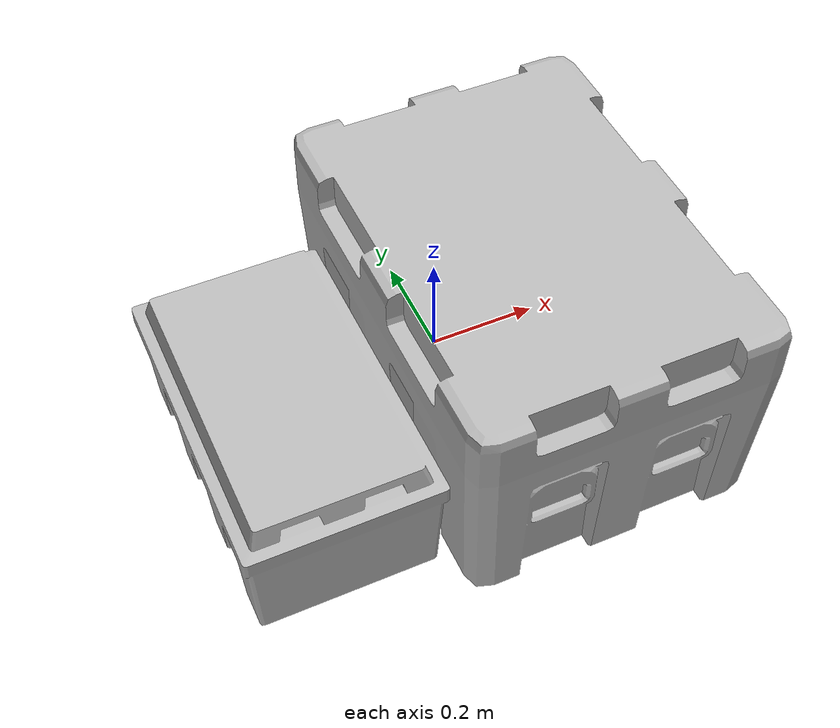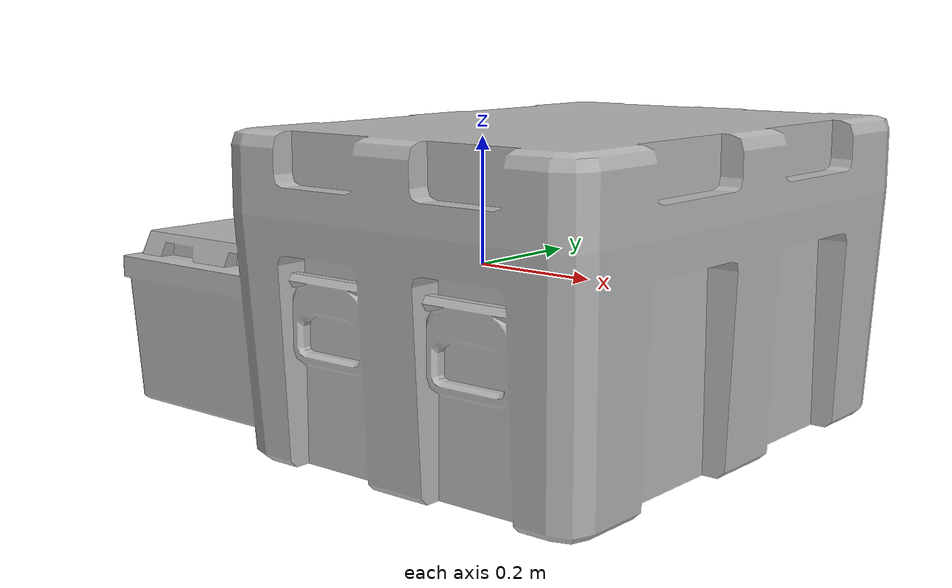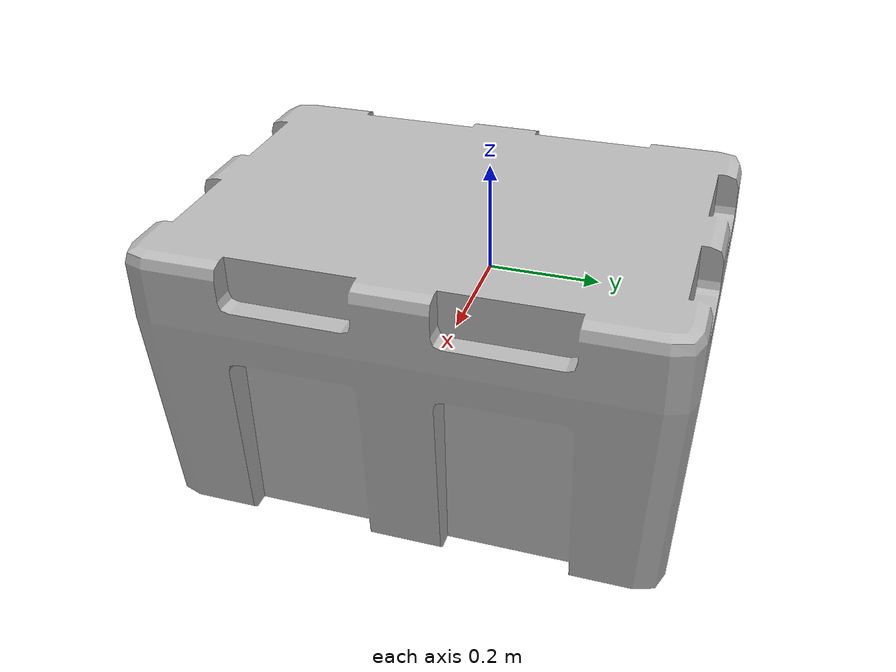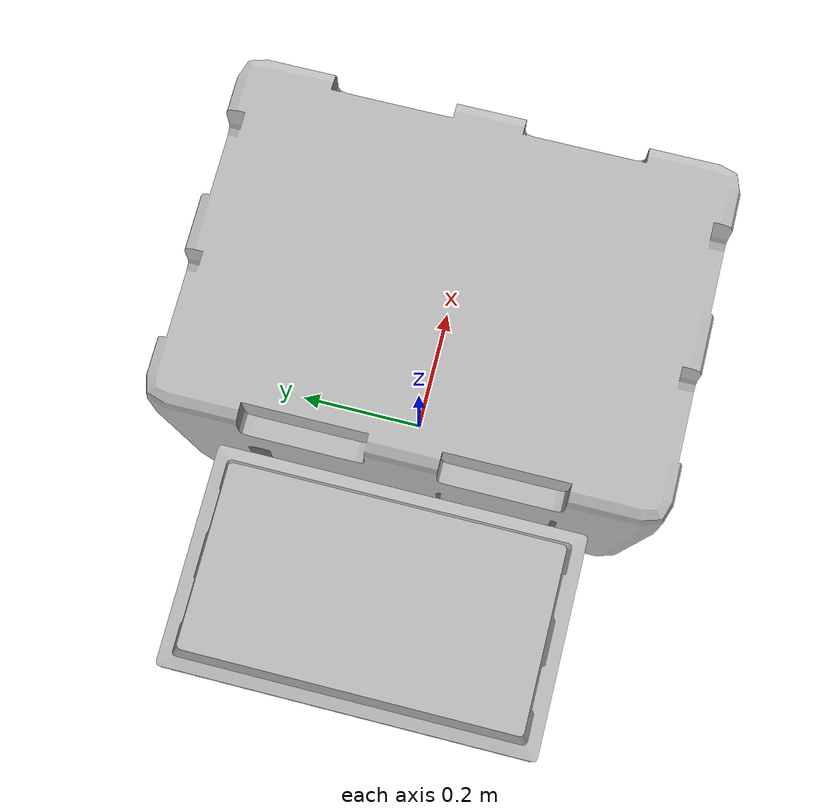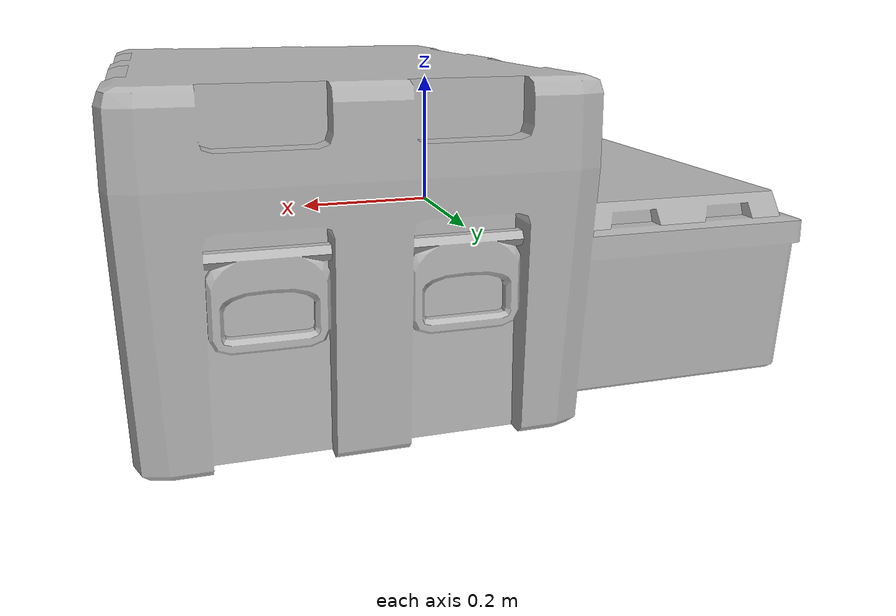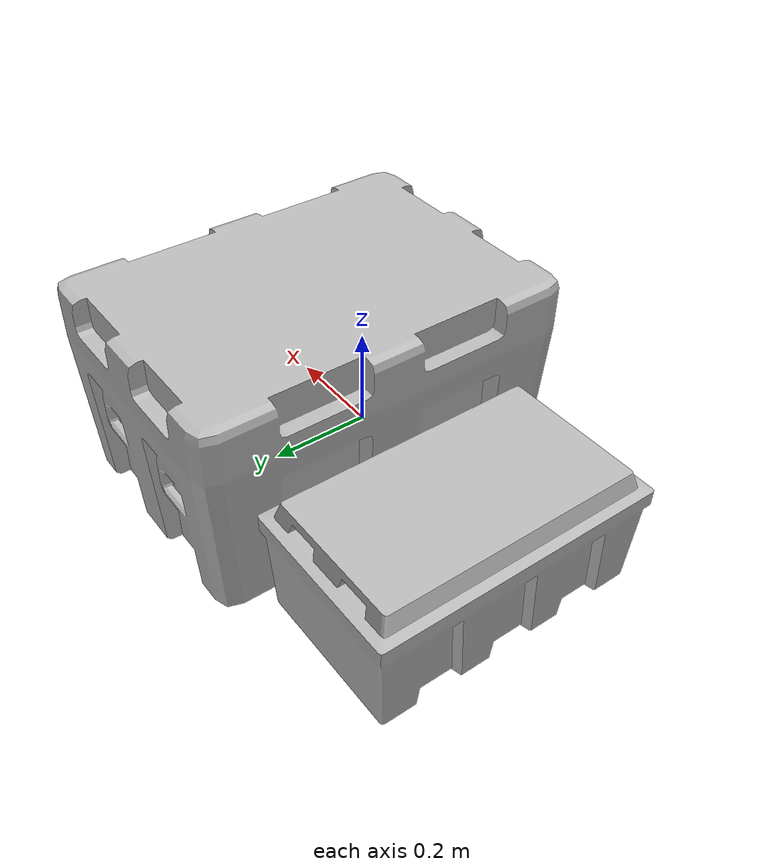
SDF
<?xml version="1.0"?>
<sdf version="1.6">
  <model name="cpu_cases">
    <link name="cpu_cases_link">
      <visual name="cpu_cases_visual">
        <pose>0.073 0 -1.53 0 0 0</pose>
        <geometry>
          <mesh>
            <uri>
              model://cpu_cases/mesh/cpu_cases.dae
            </uri>
          </mesh>
        </geometry>
      </visual>
      <collision name="cpu_case_1_collision">
        <pose>0.185 0 0 0 0 0</pose>
        <geometry>
          <box><size>0.595 0.83 0.47</size></box>
        </geometry>
      </collision>
      <collision name="cpu_case_2_collision">
        <pose>-0.3 0 -0.092 0 0 0</pose>
        <geometry>
          <box><size>0.375 0.64 0.28</size></box>
        </geometry>
      </collision>
      <inertial>
        <mass>20</mass>
        <inertia>
          <ixx>1.51633333333333</ixx>
          <iyy>1.93633333333333</iyy>
          <izz>2.71633333333333</izz>
          <ixy>0</ixy>
          <ixz>0</ixz>
          <iyz>0</iyz>
        </inertia>
      </inertial>
    </link>
  </model>
</sdf>
